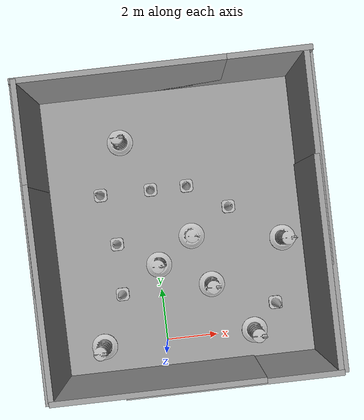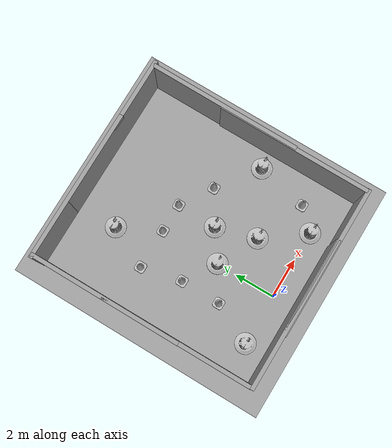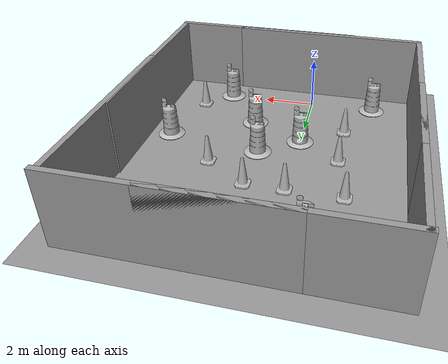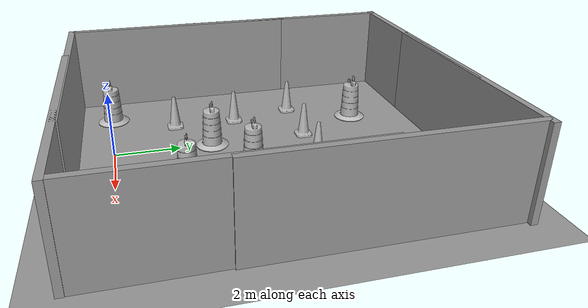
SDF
<sdf version="1.4">
 <world name="default">
  <light name="sun" type="directional">
   <pose>0 0 10 0 -0 0</pose>
   <diffuse>0.8 0.8 0.8 1</diffuse>
   <specular>0.2 0.2 0.2 1</specular>
   <attenuation>
    <range>1000</range>
    <constant>0.9</constant>
    <linear>0.01</linear>
    <quadratic>0.001</quadratic>
   </attenuation>
   <direction>0.5 0.1 -0.9</direction>
  </light>
  <scene><ambient>0.4 0.4 0.4 1</ambient><background>0.7 0.7 0.7 1</background><shadows>1</shadows></scene>
  <physics type="ode">
   <max_step_size>0.01</max_step_size>
   <real_time_factor>1</real_time_factor>
   <real_time_update_rate>100</real_time_update_rate>
   <gravity>0 0 -9.8</gravity>
  </physics>
  <model name="ground_plane_0">
   <static>1</static>
   <link name="link">
    <collision name="collision">
     <geometry><plane><normal>0 0 1</normal><size>100 100</size></plane></geometry>
     <surface><friction><ode><mu>100</mu><mu2>50</mu2></ode></friction></surface>
    </collision>
    <visual name="visual">
     <cast_shadows>0</cast_shadows>
     <geometry><plane><normal>0 0 1</normal><size>100 100</size></plane></geometry>
     <material>
      <script><uri>file://media/materials/scripts/gazebo.material</uri><name>Gazebo/Grey</name></script>
     </material>
    </visual>
    <velocity_decay><linear>0</linear><angular>0</angular></velocity_decay>
   </link>
   <pose>0.497681 0 0 0 -0 0</pose>
  </model>
  <spherical_coordinates>
   <surface_model>EARTH_WGS84</surface_model>
   <latitude_deg>0</latitude_deg>
   <longitude_deg>0</longitude_deg>
   <elevation>0</elevation>
   <heading_deg>0</heading_deg>
  </spherical_coordinates>
  <model name="grey_wall_1">
   <static>1</static>
   <link name="link">
    <pose>0 0 1.4 0 -0 0</pose>
    <collision name="collision"><geometry><box><size>7.5 0.2 2.8</size></box></geometry></collision>
    <visual name="visual">
     <cast_shadows>0</cast_shadows>
     <geometry><box><size>7.5 0.2 2.8</size></box></geometry>
     <material>
      <script>
       <uri>model://grey_wall/materials/scripts</uri>
       <uri>model://grey_wall/materials/textures</uri>
       <name>vrc/grey_wall</name>
      </script>
     </material>
    </visual>
    <velocity_decay><linear>0</linear><angular>0</angular></velocity_decay>
   </link>
   <pose>-0.400644 -1.11143 0 0 -0 0</pose>
  </model>
  <model name="grey_wall_2">
   <static>1</static>
   <link name="link">
    <pose>0 0 1.4 0 -0 0</pose>
    <collision name="collision"><geometry><box><size>7.5 0.2 2.8</size></box></geometry></collision>
    <visual name="visual">
     <cast_shadows>0</cast_shadows>
     <geometry><box><size>7.5 0.2 2.8</size></box></geometry>
     <material>
      <script>
       <uri>model://grey_wall/materials/scripts</uri>
       <uri>model://grey_wall/materials/textures</uri>
       <name>vrc/grey_wall</name>
      </script>
     </material>
    </visual>
    <velocity_decay><linear>0</linear><angular>0</angular></velocity_decay>
   </link>
   <pose>2.25578 -1.15272 0 0 -0 0</pose>
  </model>
  <model name="grey_wall_3">
   <static>1</static>
   <link name="link">
    <pose>0 0 1.4 0 -0 0</pose>
    <collision name="collision"><geometry><box><size>7.5 0.2 2.8</size></box></geometry></collision>
    <visual name="visual">
     <cast_shadows>0</cast_shadows>
     <geometry><box><size>7.5 0.2 2.8</size></box></geometry>
     <material>
      <script>
       <uri>model://grey_wall/materials/scripts</uri>
       <uri>model://grey_wall/materials/textures</uri>
       <name>vrc/grey_wall</name>
      </script>
     </material>
    </visual>
    <velocity_decay><linear>0</linear><angular>0</angular></velocity_decay>
   </link>
   <pose>-4.09244 2.68441 0 0 0 -1.56568</pose>
  </model>
  <model name="grey_wall_4">
   <static>1</static>
   <link name="link">
    <pose>0 0 1.4 0 -0 0</pose>
    <collision name="collision"><geometry><box><size>7.5 0.2 2.8</size></box></geometry></collision>
    <visual name="visual">
     <cast_shadows>0</cast_shadows>
     <geometry><box><size>7.5 0.2 2.8</size></box></geometry>
     <material>
      <script>
       <uri>model://grey_wall/materials/scripts</uri>
       <uri>model://grey_wall/materials/textures</uri>
       <name>vrc/grey_wall</name>
      </script>
     </material>
    </visual>
    <velocity_decay><linear>0</linear><angular>0</angular></velocity_decay>
   </link>
   <pose>-4.11112 6.31545 0 0 -0 1.57254</pose>
  </model>
  <model name="grey_wall_5">
   <static>1</static>
   <link name="link">
    <pose>0 0 1.4 0 -0 0</pose>
    <collision name="collision"><geometry><box><size>7.5 0.2 2.8</size></box></geometry></collision>
    <visual name="visual">
     <cast_shadows>0</cast_shadows>
     <geometry><box><size>7.5 0.2 2.8</size></box></geometry>
     <material>
      <script>
       <uri>model://grey_wall/materials/scripts</uri>
       <uri>model://grey_wall/materials/textures</uri>
       <name>vrc/grey_wall</name>
      </script>
     </material>
    </visual>
    <velocity_decay><linear>0</linear><angular>0</angular></velocity_decay>
   </link>
   <pose>-0.52469 10 0 0 -0 0</pose>
  </model>
  <model name="grey_wall_6">
   <static>1</static>
   <link name="link">
    <pose>0 0 1.4 0 -0 0</pose>
    <collision name="collision"><geometry><box><size>7.5 0.2 2.8</size></box></geometry></collision>
    <visual name="visual">
     <cast_shadows>0</cast_shadows>
     <geometry><box><size>7.5 0.2 2.8</size></box></geometry>
     <material>
      <script>
       <uri>model://grey_wall/materials/scripts</uri>
       <uri>model://grey_wall/materials/textures</uri>
       <name>vrc/grey_wall</name>
      </script>
     </material>
    </visual>
    <velocity_decay><linear>0</linear><angular>0</angular></velocity_decay>
   </link>
   <pose>2.43485 10 0 0 -0 0</pose>
  </model>
  <model name="grey_wall_7">
   <static>1</static>
   <link name="link">
    <pose>0 0 1.4 0 -0 0</pose>
    <collision name="collision"><geometry><box><size>7.5 0.2 2.8</size></box></geometry></collision>
    <visual name="visual">
     <cast_shadows>0</cast_shadows>
     <geometry><box><size>7.5 0.2 2.8</size></box></geometry>
     <material>
      <script>
       <uri>model://grey_wall/materials/scripts</uri>
       <uri>model://grey_wall/materials/textures</uri>
       <name>vrc/grey_wall</name>
      </script>
     </material>
    </visual>
    <velocity_decay><linear>0</linear><angular>0</angular></velocity_decay>
   </link>
   <pose>5.89002 2.61265 0 0 -0 1.57083</pose>
  </model>
  <model name="grey_wall_8">
   <static>1</static>
   <link name="link">
    <pose>0 0 1.4 0 -0 0</pose>
    <collision name="collision"><geometry><box><size>7.5 0.2 2.8</size></box></geometry></collision>
    <visual name="visual">
     <cast_shadows>0</cast_shadows>
     <geometry><box><size>7.5 0.2 2.8</size></box></geometry>
     <material>
      <script>
       <uri>model://grey_wall/materials/scripts</uri>
       <uri>model://grey_wall/materials/textures</uri>
       <name>vrc/grey_wall</name>
      </script>
     </material>
    </visual>
    <velocity_decay><linear>0</linear><angular>0</angular></velocity_decay>
   </link>
   <pose>5.94459 6.28638 0 0 0 -1.57326</pose>
  </model>
  <model name="Construction Barrel">
   <link name="link">
    <inertial>
     <pose>0 0 0.4 0 -0 0</pose>
     <mass>500</mass>
     <inertia><ixx>51.2096</ixx><iyy>51.2096</iyy><izz>25</izz><ixy>0</ixy><ixz>0</ixz><iyz>0</iyz></inertia>
    </inertial>
    <collision name="collision">
     <geometry><mesh><uri>model://construction_barrel/meshes/construction_barrel.dae</uri></mesh></geometry>
    </collision>
    <visual name="visual">
     <geometry><mesh><uri>model://construction_barrel/meshes/construction_barrel.dae</uri></mesh></geometry>
    </visual>
    <velocity_decay><linear>0</linear><angular>0</angular></velocity_decay>
   </link>
   <pose>4.6e-05 3.00002 -0.00017 -6.9e-05 -0.000543 9.7e-05</pose>
   <static>0</static>
  </model>
  <model name="Construction Barrel_0">
   <link name="link">
    <inertial>
     <pose>0 0 0.4 0 -0 0</pose>
     <mass>500</mass>
     <inertia><ixx>51.2096</ixx><iyy>51.2096</iyy><izz>25</izz><ixy>0</ixy><ixz>0</ixz><iyz>0</iyz></inertia>
    </inertial>
    <collision name="collision">
     <geometry><mesh><uri>model://construction_barrel/meshes/construction_barrel.dae</uri></mesh></geometry>
    </collision>
    <visual name="visual">
     <geometry><mesh><uri>model://construction_barrel/meshes/construction_barrel.dae</uri></mesh></geometry>
    </visual>
    <velocity_decay><linear>0</linear><angular>0</angular></velocity_decay>
   </link>
   <pose>2.00004 2.00003 -9.1e-05 0.00031 0.000179 7e-05</pose>
   <static>0</static>
  </model>
  <model name="Construction Cone">
   <link name="link">
    <collision name="collision">
     <geometry>
      <mesh><scale>10 10 10</scale><uri>model://construction_cone/meshes/construction_cone.dae</uri></mesh>
     </geometry>
    </collision>
    <visual name="visual">
     <geometry>
      <mesh><scale>10 10 10</scale><uri>model://construction_cone/meshes/construction_cone.dae</uri></mesh>
     </geometry>
    </visual>
    <velocity_decay><linear>0</linear><angular>0</angular></velocity_decay>
    <inertial>
     <inertia><ixx>1</ixx><ixy>0</ixy><ixz>0</ixz><iyy>1</iyy><iyz>0</iyz><izz>1</izz></inertia>
     <mass>1</mass>
    </inertial>
   </link>
   <pose>-1.56736 2 -0.000878 6e-06 1e-06 -1e-06</pose>
   <static>0</static>
  </model>
  <model name="Construction Cone_0">
   <link name="link">
    <collision name="collision">
     <geometry>
      <mesh><scale>10 10 10</scale><uri>model://construction_cone/meshes/construction_cone.dae</uri></mesh>
     </geometry>
    </collision>
    <visual name="visual">
     <geometry>
      <mesh><scale>10 10 10</scale><uri>model://construction_cone/meshes/construction_cone.dae</uri></mesh>
     </geometry>
    </visual>
    <velocity_decay><linear>0</linear><angular>0</angular></velocity_decay>
    <inertial>
     <inertia><ixx>1</ixx><ixy>0</ixy><ixz>0</ixz><iyy>1</iyy><iyz>0</iyz><izz>1</izz></inertia>
     <mass>1</mass>
    </inertial>
   </link>
   <pose>-1.56447 4 -0.000878 6e-06 1e-06 -1e-06</pose>
   <static>0</static>
  </model>
  <model name="Construction Cone_1">
   <link name="link">
    <collision name="collision">
     <geometry>
      <mesh><scale>10 10 10</scale><uri>model://construction_cone/meshes/construction_cone.dae</uri></mesh>
     </geometry>
    </collision>
    <visual name="visual">
     <geometry>
      <mesh><scale>10 10 10</scale><uri>model://construction_cone/meshes/construction_cone.dae</uri></mesh>
     </geometry>
    </visual>
    <velocity_decay><linear>0</linear><angular>0</angular></velocity_decay>
    <inertial>
     <inertia><ixx>1</ixx><ixy>0</ixy><ixz>0</ixz><iyy>1</iyy><iyz>0</iyz><izz>1</izz></inertia>
     <mass>1</mass>
    </inertial>
   </link>
   <pose>4.43116 1 -0.000878 6e-06 1e-06 -1e-06</pose>
   <static>0</static>
  </model>
  <model name="Construction Cone_2">
   <link name="link">
    <collision name="collision">
     <geometry>
      <mesh><scale>10 10 10</scale><uri>model://construction_cone/meshes/construction_cone.dae</uri></mesh>
     </geometry>
    </collision>
    <visual name="visual">
     <geometry>
      <mesh><scale>10 10 10</scale><uri>model://construction_cone/meshes/construction_cone.dae</uri></mesh>
     </geometry>
    </visual>
    <velocity_decay><linear>0</linear><angular>0</angular></velocity_decay>
    <inertial>
     <inertia><ixx>1</ixx><ixy>0</ixy><ixz>0</ixz><iyy>1</iyy><iyz>0</iyz><izz>1</izz></inertia>
     <mass>1</mass>
    </inertial>
   </link>
   <pose>3 5 -0.000878 6e-06 1e-06 -1e-06</pose>
   <static>0</static>
  </model>
  <model name="Construction Cone_3">
   <link name="link">
    <collision name="collision">
     <geometry>
      <mesh><scale>10 10 10</scale><uri>model://construction_cone/meshes/construction_cone.dae</uri></mesh>
     </geometry>
    </collision>
    <visual name="visual">
     <geometry>
      <mesh><scale>10 10 10</scale><uri>model://construction_cone/meshes/construction_cone.dae</uri></mesh>
     </geometry>
    </visual>
    <velocity_decay><linear>0</linear><angular>0</angular></velocity_decay>
    <inertial>
     <inertia><ixx>1</ixx><ixy>0</ixy><ixz>0</ixz><iyy>1</iyy><iyz>0</iyz><izz>1</izz></inertia>
     <mass>1</mass>
    </inertial>
   </link>
   <pose>1.43816 6 -0.000878 6e-06 1e-06 -1e-06</pose>
   <static>0</static>
  </model>
  <model name="Construction Cone_4">
   <link name="link">
    <collision name="collision">
     <geometry>
      <mesh><scale>10 10 10</scale><uri>model://construction_cone/meshes/construction_cone.dae</uri></mesh>
     </geometry>
    </collision>
    <visual name="visual">
     <geometry>
      <mesh><scale>10 10 10</scale><uri>model://construction_cone/meshes/construction_cone.dae</uri></mesh>
     </geometry>
    </visual>
    <velocity_decay><linear>0</linear><angular>0</angular></velocity_decay>
    <inertial>
     <inertia><ixx>1</ixx><ixy>0</ixy><ixz>0</ixz><iyy>1</iyy><iyz>0</iyz><izz>1</izz></inertia>
     <mass>1</mass>
    </inertial>
   </link>
   <pose>0 6 -0.000878 6e-06 1e-06 -1e-06</pose>
   <static>0</static>
  </model>
  <model name="Construction Cone_5">
   <link name="link">
    <collision name="collision">
     <geometry>
      <mesh><scale>10 10 10</scale><uri>model://construction_cone/meshes/construction_cone.dae</uri></mesh>
     </geometry>
    </collision>
    <visual name="visual">
     <geometry>
      <mesh><scale>10 10 10</scale><uri>model://construction_cone/meshes/construction_cone.dae</uri></mesh>
     </geometry>
    </visual>
    <velocity_decay><linear>0</linear><angular>0</angular></velocity_decay>
    <inertial>
     <inertia><ixx>1</ixx><ixy>0</ixy><ixz>0</ixz><iyy>1</iyy><iyz>0</iyz><izz>1</izz></inertia>
     <mass>1</mass>
    </inertial>
   </link>
   <pose>-2 6 -0.000878 6e-06 1e-06 -1e-06</pose>
   <static>0</static>
  </model>
  <model name="Construction Barrel_1">
   <link name="link">
    <inertial>
     <pose>0 0 0.4 0 -0 0</pose>
     <mass>500</mass>
     <inertia><ixx>51.2096</ixx><iyy>51.2096</iyy><izz>25</izz><ixy>0</ixy><ixz>0</ixz><iyz>0</iyz></inertia>
    </inertial>
    <collision name="collision">
     <geometry><mesh><uri>model://construction_barrel/meshes/construction_barrel.dae</uri></mesh></geometry>
    </collision>
    <visual name="visual">
     <geometry><mesh><uri>model://construction_barrel/meshes/construction_barrel.dae</uri></mesh></geometry>
    </visual>
    <velocity_decay><linear>0</linear><angular>0</angular></velocity_decay>
   </link>
   <pose>1.41658 4.00011 -9.1e-05 0.00031 0.000179 -0.000152</pose>
   <static>0</static>
  </model>
  <model name="Construction Barrel_2">
   <link name="link">
    <inertial>
     <pose>0 0 0.4 0 -0 0</pose>
     <mass>500</mass>
     <inertia><ixx>51.2096</ixx><iyy>51.2096</iyy><izz>25</izz><ixy>0</ixy><ixz>0</ixz><iyz>0</iyz></inertia>
    </inertial>
    <collision name="collision">
     <geometry><mesh><uri>model://construction_barrel/meshes/construction_barrel.dae</uri></mesh></geometry>
    </collision>
    <visual name="visual">
     <geometry><mesh><uri>model://construction_barrel/meshes/construction_barrel.dae</uri></mesh></geometry>
    </visual>
    <velocity_decay><linear>0</linear><angular>0</angular></velocity_decay>
   </link>
   <pose>-0.999999 8.00012 -0.00017 -6.9e-05 -0.000543 -0.00018</pose>
   <static>0</static>
  </model>
  <model name="Construction Barrel_3">
   <link name="link">
    <inertial>
     <pose>0 0 0.4 0 -0 0</pose>
     <mass>500</mass>
     <inertia><ixx>51.2096</ixx><iyy>51.2096</iyy><izz>25</izz><ixy>0</ixy><ixz>0</ixz><iyz>0</iyz></inertia>
    </inertial>
    <collision name="collision">
     <geometry><mesh><uri>model://construction_barrel/meshes/construction_barrel.dae</uri></mesh></geometry>
    </collision>
    <visual name="visual">
     <geometry><mesh><uri>model://construction_barrel/meshes/construction_barrel.dae</uri></mesh></geometry>
    </visual>
    <velocity_decay><linear>0</linear><angular>0</angular></velocity_decay>
   </link>
   <pose>-2.51091 0.000125 -9.1e-05 0.00031 0.000179 -0.000207</pose>
   <static>0</static>
  </model>
  <model name="Construction Barrel_4">
   <link name="link">
    <inertial>
     <pose>0 0 0.4 0 -0 0</pose>
     <mass>500</mass>
     <inertia><ixx>51.2096</ixx><iyy>51.2096</iyy><izz>25</izz><ixy>0</ixy><ixz>0</ixz><iyz>0</iyz></inertia>
    </inertial>
    <collision name="collision">
     <geometry><mesh><uri>model://construction_barrel/meshes/construction_barrel.dae</uri></mesh></geometry>
    </collision>
    <visual name="visual">
     <geometry><mesh><uri>model://construction_barrel/meshes/construction_barrel.dae</uri></mesh></geometry>
    </visual>
    <velocity_decay><linear>0</linear><angular>0</angular></velocity_decay>
   </link>
   <pose>3.48868 0.000134 -0.00017 -6.9e-05 -0.000543 -0.000235</pose>
   <static>0</static>
  </model>
  <model name="Construction Barrel_5">
   <link name="link">
    <inertial>
     <pose>0 0 0.4 0 -0 0</pose>
     <mass>500</mass>
     <inertia><ixx>51.2096</ixx><iyy>51.2096</iyy><izz>25</izz><ixy>0</ixy><ixz>0</ixz><iyz>0</iyz></inertia>
    </inertial>
    <collision name="collision">
     <geometry><mesh><uri>model://construction_barrel/meshes/construction_barrel.dae</uri></mesh></geometry>
    </collision>
    <visual name="visual">
     <geometry><mesh><uri>model://construction_barrel/meshes/construction_barrel.dae</uri></mesh></geometry>
    </visual>
    <velocity_decay><linear>0</linear><angular>0</angular></velocity_decay>
   </link>
   <pose>4.99999 3.52801 -9.1e-05 0.00031 0.000179 -0.000263</pose>
   <static>0</static>
  </model>
 </world>
</sdf>
